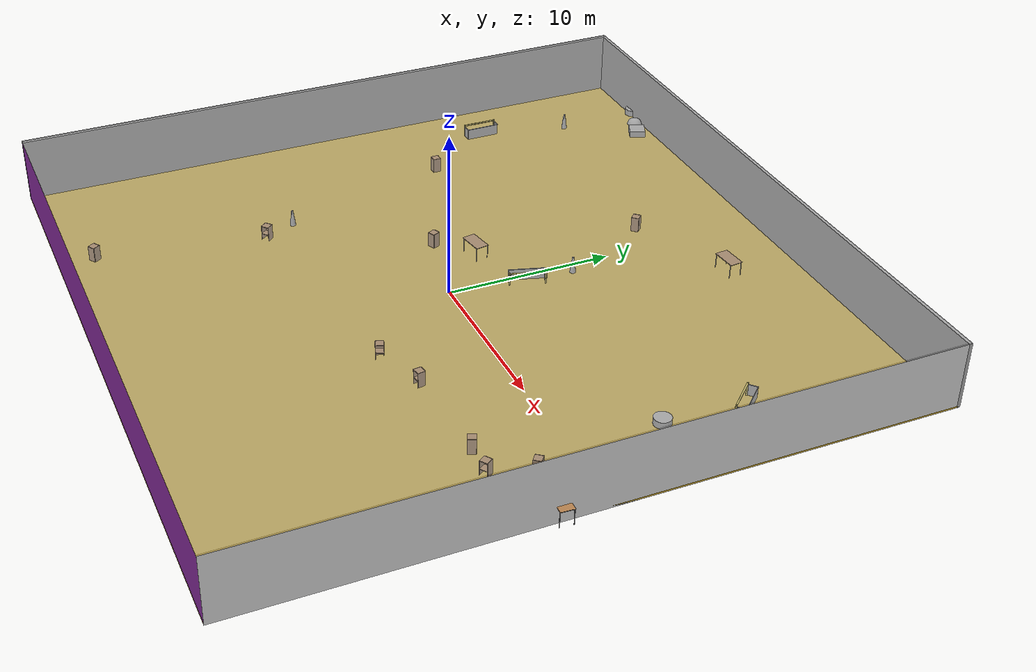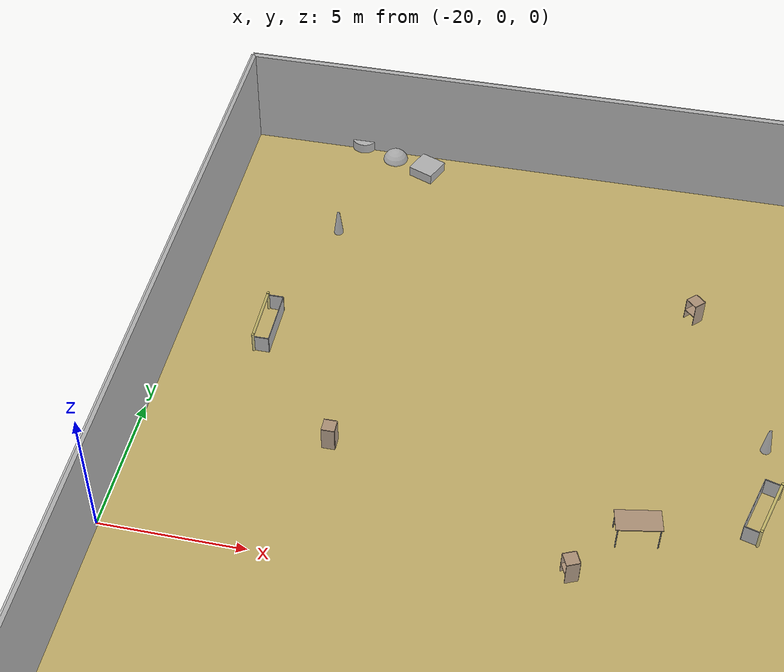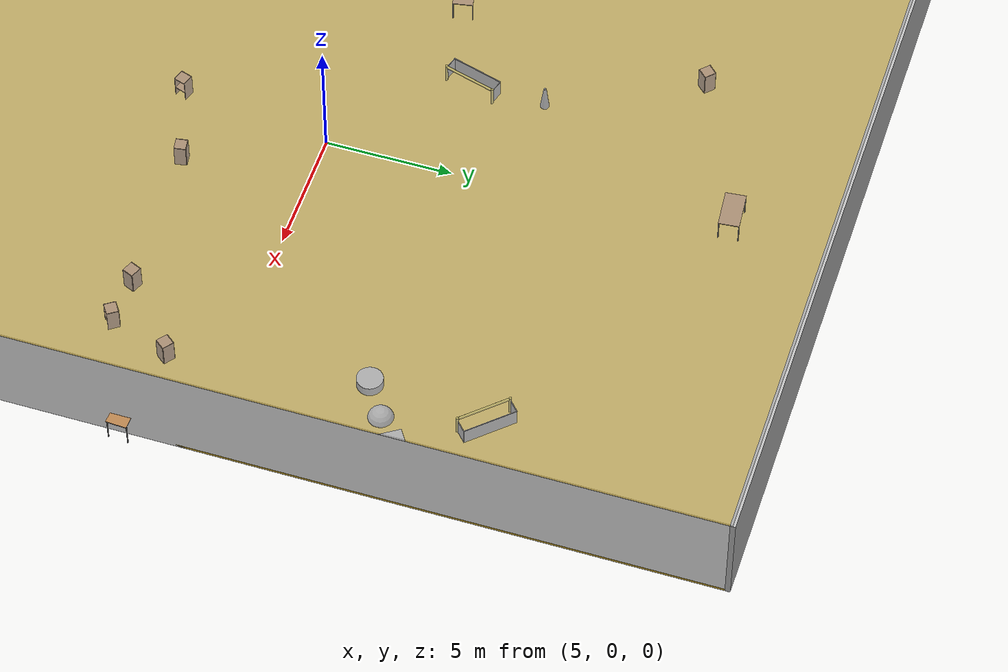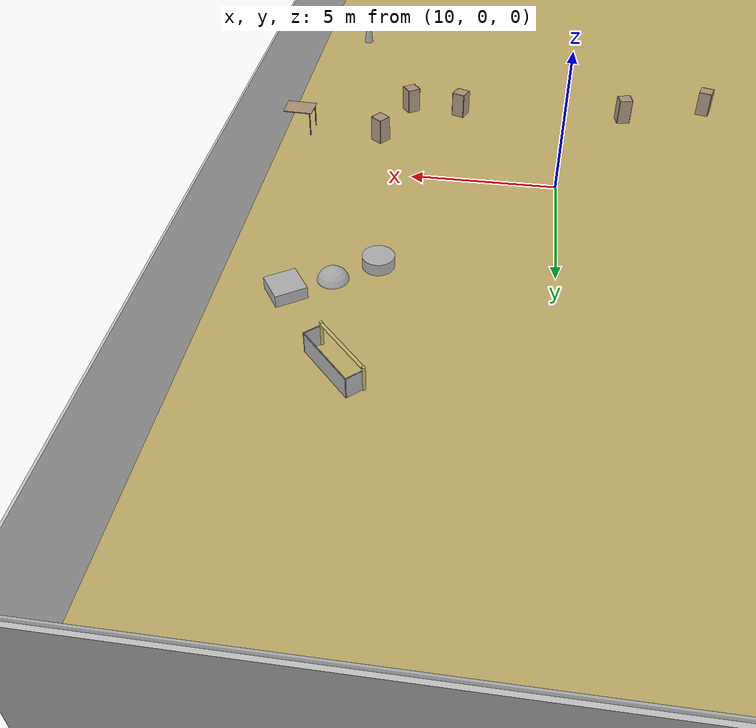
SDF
<sdf version="1.4">
 <world name="default">
  <physics type="ode">
   <max_step_size>0.001</max_step_size>
   <real_time_factor>1</real_time_factor>
   <real_time_update_rate>1000</real_time_update_rate>
   <gravity>0 0 -9.8</gravity>
  </physics>
  <scene><ambient>0.4 0.4 0.4 1</ambient><background>0.7 0.7 0.7 1</background><shadows>1</shadows></scene>
  <model name="Surrounding">
   <static>1</static>
   <link name="Ceiling">
    <collision name="Ceiling_Collision"><geometry><box><size>40 40 0.1</size></box></geometry></collision>
    <visual name="Ceiling_Visual">
     <geometry><box><size>40 40 0.1</size></box></geometry>
     <material>
      <script><uri>file://media/materials/scripts/gazebo.material</uri><name>Gazebo/GreyTransparent</name></script>
     </material>
    </visual>
    <pose>0 0 4.05 0 0 0</pose>
   </link>
   <link name="Wall_South">
    <collision name="Wall_South_Collision">
     <geometry><box><size>40 0 4</size></box></geometry>
     <pose>0 0 2 0 -0 0</pose>
    </collision>
    <visual name="Wall_South_Visual">
     <pose>0 0 2 0 -0 0</pose>
     <geometry><box><size>40 0 4</size></box></geometry>
     <material>
      <script><uri>file://media/materials/scripts/gazebo.material</uri><name>Gazebo/Purple</name></script>
     </material>
    </visual>
    <velocity_decay><linear>0</linear><angular>0</angular></velocity_decay>
    <pose>0 -20 0 0 -0 0</pose>
   </link>
   <link name="Wall_East">
    <collision name="Wall_21_Collision">
     <geometry><box><size>40 0 4</size></box></geometry>
     <pose>0 0 2 0 -0 0</pose>
    </collision>
    <visual name="Wall_21_Visual">
     <pose>0 0 2 0 -0 0</pose>
     <geometry><box><size>40 0 4</size></box></geometry>
     <material>
      <script><uri>file://media/materials/scripts/gazebo.material</uri><name>Gazebo/White</name></script>
     </material>
    </visual>
    <velocity_decay><linear>0</linear><angular>0</angular></velocity_decay>
    <pose>20 0 0 0 -0 1.5708</pose>
   </link>
   <link name="Wall_North">
    <collision name="Wall_22_Collision">
     <geometry><box><size>40 0.2 4</size></box></geometry>
     <pose>0 0 2 0 -0 0</pose>
    </collision>
    <visual name="Wall_22_Visual">
     <pose>0 0 2 0 -0 0</pose>
     <geometry><box><size>40 0.2 4</size></box></geometry>
     <material>
      <script><uri>file://media/materials/scripts/gazebo.material</uri><name>Gazebo/LightOff</name></script>
     </material>
    </visual>
    <velocity_decay><linear>0</linear><angular>0</angular></velocity_decay>
    <pose>0 20 0 0 -0 0</pose>
   </link>
   <link name="Wall_West">
    <collision name="Wall_23_Collision">
     <geometry><box><size>40 0.2 4</size></box></geometry>
     <pose>0 0 2 0 -0 0</pose>
    </collision>
    <visual name="Wall_23_Visual">
     <pose>0 0 2 0 -0 0</pose>
     <geometry><box><size>40 0.2 4</size></box></geometry>
     <material>
      <script><uri>file://media/materials/scripts/gazebo.material</uri><name>Gazebo/CloudySky</name></script>
     </material>
    </visual>
    <velocity_decay><linear>0</linear><angular>0</angular></velocity_decay>
    <pose>-20 0 0 0 0 -1.5708</pose>
   </link>
   <link name="Ground_link">
    <collision name="collision">
     <pose>0 0 .05 0 -0 0</pose>
     <geometry><box><size>40 40 0.1</size></box></geometry>
    </collision>
    <visual name="visual">
     <pose>0 0 .05 0 -0 0</pose>
     <geometry><box><size>40 40 0.1</size></box></geometry>
     <material>
      <script><uri>file://media/materials/scripts/gazebo.material</uri><name>Gazebo/Gold</name></script>
     </material>
    </visual>
   </link>
   <static>1</static>
  </model>
  <spherical_coordinates>
   <surface_model>EARTH_WGS84</surface_model>
   <latitude_deg>0</latitude_deg>
   <longitude_deg>0</longitude_deg>
   <elevation>0</elevation>
   <heading_deg>0</heading_deg>
  </spherical_coordinates>
  <light name="lightball_0" type="diffuse">
   <diffuse>0.8 0.8 0.8 1</diffuse>
   <specular>0.2 0.2 0.2 1</specular>
   <attenuation>
    <range>100</range>
    <constant>0.7</constant>
    <linear>0.01</linear>
    <quadratic>0.001</quadratic>
   </attenuation>
   <direction>-0.5 0.1 -0.9</direction>
   <pose>-13.9296430942 5.41245826011 3.68984053088 0 0 0</pose>
  </light>
  <light name="lightball_1" type="diffuse">
   <diffuse>0.8 0.8 0.8 1</diffuse>
   <specular>0.2 0.2 0.2 1</specular>
   <attenuation>
    <range>100</range>
    <constant>0.7</constant>
    <linear>0.01</linear>
    <quadratic>0.001</quadratic>
   </attenuation>
   <direction>-0.5 0.1 -0.9</direction>
   <pose>15.0962703838 19.3340669861 3.62100587868 0 0 0</pose>
  </light>
  <light name="lightball_2" type="diffuse">
   <diffuse>0.8 0.8 0.8 1</diffuse>
   <specular>0.2 0.2 0.2 1</specular>
   <attenuation>
    <range>100</range>
    <constant>0.7</constant>
    <linear>0.01</linear>
    <quadratic>0.001</quadratic>
   </attenuation>
   <direction>-0.5 0.1 -0.9</direction>
   <pose>0.353371623248 -16.3315168014 1.88513524924 0 0 0</pose>
  </light>
  <light name="lightball_3" type="diffuse">
   <diffuse>0.8 0.8 0.8 1</diffuse>
   <specular>0.2 0.2 0.2 1</specular>
   <attenuation>
    <range>100</range>
    <constant>0.7</constant>
    <linear>0.01</linear>
    <quadratic>0.001</quadratic>
   </attenuation>
   <direction>-0.5 0.1 -0.9</direction>
   <pose>10.4964973943 12.7515941995 2.04780793593 0 0 0</pose>
  </light>
  <light name="lightball_4" type="diffuse">
   <diffuse>0.8 0.8 0.8 1</diffuse>
   <specular>0.2 0.2 0.2 1</specular>
   <attenuation>
    <range>100</range>
    <constant>0.7</constant>
    <linear>0.01</linear>
    <quadratic>0.001</quadratic>
   </attenuation>
   <direction>-0.5 0.1 -0.9</direction>
   <pose>-0.694135983993 -10.0248924038 2.41715516456 0 0 0</pose>
  </light>
  <light name="lightball_5" type="diffuse">
   <diffuse>0.8 0.8 0.8 1</diffuse>
   <specular>0.2 0.2 0.2 1</specular>
   <attenuation>
    <range>100</range>
    <constant>0.7</constant>
    <linear>0.01</linear>
    <quadratic>0.001</quadratic>
   </attenuation>
   <direction>-0.5 0.1 -0.9</direction>
   <pose>-2.04186014065 1.45255924182 1.28596470363 0 0 0</pose>
  </light>
  <light name="lightball_6" type="diffuse">
   <diffuse>0.8 0.8 0.8 1</diffuse>
   <specular>0.2 0.2 0.2 1</specular>
   <attenuation>
    <range>100</range>
    <constant>0.7</constant>
    <linear>0.01</linear>
    <quadratic>0.001</quadratic>
   </attenuation>
   <direction>-0.5 0.1 -0.9</direction>
   <pose>8.62765083791 7.24305494938 2.3525730746 0 0 0</pose>
  </light>
  <light name="lightball_7" type="diffuse">
   <diffuse>0.8 0.8 0.8 1</diffuse>
   <specular>0.2 0.2 0.2 1</specular>
   <attenuation>
    <range>100</range>
    <constant>0.7</constant>
    <linear>0.01</linear>
    <quadratic>0.001</quadratic>
   </attenuation>
   <direction>-0.5 0.1 -0.9</direction>
   <pose>4.02696712225 2.87095251193 3.14503584719 0 0 0</pose>
  </light>
  <light name="lightball_8" type="diffuse">
   <diffuse>0.8 0.8 0.8 1</diffuse>
   <specular>0.2 0.2 0.2 1</specular>
   <attenuation>
    <range>100</range>
    <constant>0.7</constant>
    <linear>0.01</linear>
    <quadratic>0.001</quadratic>
   </attenuation>
   <direction>-0.5 0.1 -0.9</direction>
   <pose>5.133151872 6.0157954777 3.46689471864 0 0 0</pose>
  </light>
  <light name="lightball_9" type="diffuse">
   <diffuse>0.8 0.8 0.8 1</diffuse>
   <specular>0.2 0.2 0.2 1</specular>
   <attenuation>
    <range>100</range>
    <constant>0.7</constant>
    <linear>0.01</linear>
    <quadratic>0.001</quadratic>
   </attenuation>
   <direction>-0.5 0.1 -0.9</direction>
   <pose>6.55488769904 12.9255224793 0.913279310821 0 0 0</pose>
  </light>
  <include>
   <uri>model://robocup_3Dsim_goal</uri>
   <pose>-17.0298252707 9.30612584482 0 0 0 0.00285450834659</pose>
  </include>
  <include><uri>model://cabinet</uri><pose>-13.4342667173 4.67513229825 0 0 0 0.00475660589595</pose></include>
  <include>
   <uri>model://construction_cone</uri>
   <pose>-15.4698588431 14.8478124269 0 0 0 2.9853629077</pose>
  </include>
  <include>
   <uri>model://textured_shapes</uri>
   <pose>-14.2061913767 19.5369415968 0 0 0 1.17435728698</pose>
  </include>
  <include><uri>model://cabinet</uri><pose>-11.2574536579 -17.8579503529 0 0 0 0.560937263198</pose></include>
  <include>
   <uri>model://construction_cone</uri>
   <pose>-10.4881839243 -5.92551557371 0 0 0 0.949156322749</pose>
  </include>
  <include><uri>model://cabinet</uri><pose>-9.55866030339 -7.83405163865 0 0 0 2.26258928878</pose></include>
  <include><uri>model://cabinet</uri><pose>-4.96443285893 1.06599203498 0 0 0 0.418127503274</pose></include>
  <include><uri>model://table</uri><pose>-3.07627172729 2.94215662058 0 0 0 0.176961766608</pose></include>
  <include><uri>model://cabinet</uri><pose>-1.94629615977 13.0086998323 0 0 0 0.785751794512</pose></include>
  <include>
   <uri>model://robocup_3Dsim_goal</uri>
   <pose>1.01753603469 4.42453032652 0 0 0 2.85427648449</pose>
  </include>
  <include>
   <uri>model://construction_cone</uri>
   <pose>0.838924654345 7.38938937672 0 0 0 2.84693592747</pose>
  </include>
  <include><uri>model://cabinet</uri><pose>4.42558315798 -5.92722351745 0 0 0 2.81993127235</pose></include>
  <include><uri>model://table</uri><pose>4.25997957855 15.7268042083 0 0 0 0.0904979836544</pose></include>
  <include><uri>model://cabinet</uri><pose>7.530289332 -4.88509226914 0 0 0 1.72866150107</pose></include>
  <include><uri>model://cabinet</uri><pose>13.6649774785 -4.55155489266 0 0 0 1.16792803767</pose></include>
  <include><uri>model://cabinet</uri><pose>15.5724605346 -4.64076120041 0 0 0 2.1751272871</pose></include>
  <include><uri>model://cabinet</uri><pose>16.4153737552 -2.2384914214 0 0 0 0.904620263245</pose></include>
  <include>
   <uri>model://textured_shapes</uri>
   <pose>16.6095725812 6.07126996976 0 0 0 2.15523254306</pose>
  </include>
  <include>
   <uri>model://robocup_3Dsim_goal</uri>
   <pose>15.6607730087 9.66778435086 0 0 0 0.743639518586</pose>
  </include>
  <include>
   <uri>model://construction_cone</uri>
   <pose>18.166416661 -10.469878571 0 0 0 2.55415960814</pose>
  </include>
  <include><uri>model://table</uri><pose>19.6864095675 -2.57732166781 0 0 0 3.08335732298</pose></include>
 </world>
</sdf>

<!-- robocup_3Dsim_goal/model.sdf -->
<sdf version="1.5">
  <model name="robocup_3d_goal">
    <static>true</static>
    <link name="left_post">
      <pose>0 1.05 0.45 0 0 0</pose>
      <collision name="collision">
        <geometry>
          <cylinder>
            <radius>0.05</radius>
            <length>0.9</length>
          </cylinder>
        </geometry>
      </collision>
      <visual name="visual">
        <geometry>
          <cylinder>
            <radius>0.05</radius>
            <length>0.9</length>
          </cylinder>
        </geometry>
        <material>
          <script>
            <uri>file://media/materials/scripts/gazebo.material</uri>
            <name>Gazebo/ZincYellow</name>
          </script>
        </material>
      </visual>
    </link>
    <link name="left_support_horiz_lower">
      <pose>0.30 1.05 0.01 0 0 0</pose>
      <collision name="collision">
        <geometry>
          <box>
            <size>0.50 0.02 0.02</size>
          </box>
        </geometry>
      </collision>
      <visual name="visual">
        <geometry>
          <box>
            <size>0.50 0.02 0.02</size>
          </box>
        </geometry>
        <material>
          <script>
            <uri>file://media/materials/scripts/gazebo.material</uri>
            <name>Gazebo/White</name>
          </script>
        </material>
      </visual>
    </link>
    <link name="left_support_horiz_upper">
      <pose>0.30 1.05 0.79 0 0 0</pose>
      <collision name="collision">
        <geometry>
          <box>
            <size>0.50 0.02 0.02</size>
          </box>
        </geometry>
      </collision>
      <visual name="visual">
        <geometry>
          <box>
            <size>0.50 0.02 0.02</size>
          </box>
        </geometry>
        <material>
          <script>
            <uri>file://media/materials/scripts/gazebo.material</uri>
            <name>Gazebo/White</name>
          </script>
        </material>
      </visual>
    </link>
    <link name="left_support_vertical">
      <pose>0.56 1.05 0.4 0 1.5708 0</pose>
      <collision name="collision">
        <geometry>
          <box>
            <size>0.80 0.02 0.02</size>
          </box>
        </geometry>
      </collision>
      <visual name="visual">
        <geometry>
          <box>
            <size>0.80 0.02 0.02</size>
          </box>
        </geometry>
        <material>
          <script>
            <uri>file://media/materials/scripts/gazebo.material</uri>
            <name>Gazebo/White</name>
          </script>
        </material>
      </visual>
    </link>
    <link name="right_support_horiz_lower">
      <pose>0.30 -1.05 0.01 0 0 0</pose>
      <collision name="collision">
        <geometry>
          <box>
            <size>0.50 0.02 0.02</size>
          </box>
        </geometry>
      </collision>
      <visual name="visual">
        <geometry>
          <box>
            <size>0.50 0.02 0.02</size>
          </box>
        </geometry>
        <material>
          <script>
            <uri>file://media/materials/scripts/gazebo.material</uri>
            <name>Gazebo/White</name>
          </script>
        </material>
      </visual>
    </link>
    <link name="right_support_horiz_upper">
      <pose>0.30 -1.05 0.79 0 0 0</pose>
      <collision name="collision">
        <geometry>
          <box>
            <size>0.50 0.02 0.02</size>
          </box>
        </geometry>
      </collision>
      <visual name="visual">
        <geometry>
          <box>
            <size>0.50 0.02 0.02</size>
          </box>
        </geometry>
        <material>
          <script>
            <uri>file://media/materials/scripts/gazebo.material</uri>
            <name>Gazebo/White</name>
          </script>
        </material>
      </visual>
    </link>
    <link name="right_support_vertical">
      <pose>0.56 -1.05 0.4 0 1.5708 0</pose>
      <collision name="collision">
        <geometry>
          <box>
            <size>0.80 0.02 0.02</size>
          </box>
        </geometry>
      </collision>
      <visual name="visual">
        <geometry>
          <box>
            <size>0.80 0.02 0.02</size>
          </box>
        </geometry>
        <material>
          <script>
            <uri>file://media/materials/scripts/gazebo.material</uri>
            <name>Gazebo/White</name>
          </script>
        </material>
      </visual>
    </link>
    <link name="center_support_horiz_lower">
      <pose>0.56 0 0.01 0 1.5708 0</pose>
      <collision name="collision">
        <geometry>
          <box>
            <size>0.02 2.08 0.02</size>
          </box>
        </geometry>
      </collision>
      <visual name="visual">
        <geometry>
          <box>
            <size>0.02 2.08 0.02</size>
          </box>
        </geometry>
        <material>
          <script>
            <uri>file://media/materials/scripts/gazebo.material</uri>
            <name>Gazebo/White</name>
          </script>
        </material>
      </visual>
    </link>
    <link name="center_support_horiz_upper">
      <pose>0.56 0 0.79 0 1.5708 0</pose>
      <collision name="collision">
        <geometry>
          <box>
            <size>0.02 2.08 0.02</size>
          </box>
        </geometry>
      </collision>
      <visual name="visual">
        <geometry>
          <box>
            <size>0.02 2.08 0.02</size>
          </box>
        </geometry>
        <material>
          <script>
            <uri>file://media/materials/scripts/gazebo.material</uri>
            <name>Gazebo/White</name>
          </script>
        </material>
      </visual>
    </link>
    <link name="right_post">
      <pose>0 -1.05 0.45 0 0 0</pose>
      <collision name="collision">
        <geometry>
          <cylinder>
            <radius>0.05</radius>
            <length>0.9</length>
          </cylinder>
        </geometry>
      </collision>
      <visual name="visual">
        <geometry>
          <cylinder>
            <radius>0.05</radius>
            <length>0.9</length>
          </cylinder>
        </geometry>
        <material>
          <script>
            <uri>file://media/materials/scripts/gazebo.material</uri>
            <name>Gazebo/ZincYellow</name>
          </script>
        </material>
      </visual>
    </link>
    <link name="crossbar">
      <pose>0 0 0.85 1.57 1.57 0</pose>
      <collision name="collision">
        <geometry>
          <cylinder>
            <radius>0.05</radius>
            <length>2.0</length>
          </cylinder>
        </geometry>
      </collision>
      <visual name="visual">
        <geometry>
          <cylinder>
            <radius>0.05</radius>
            <length>2.0</length>
          </cylinder>
        </geometry>
        <material>
          <script>
            <uri>file://media/materials/scripts/gazebo.material</uri>
            <name>Gazebo/ZincYellow</name>
          </script>
        </material>
      </visual>
    </link>
    <link name="center_net">
      <pose>0.56 0 0.40 0 0 0</pose>
      <collision name="collision">
        <geometry>
          <box>
            <size>0.01 2.1 0.80</size>
          </box>
        </geometry>
      </collision>
      <visual name="visual">
        <geometry>
          <box>
            <size>0.01 2.1 0.80</size>
          </box>
        </geometry>
        <material>
          <script>
            <uri>model://../model_source/models/robocup09_spl_field/materials/scripts/</uri>
            <uri>model://../model_source/models/robocup09_spl_field/materials/textures/</uri>
            <name>RoboCup/Net</name>
          </script>
        </material>
      </visual>
    </link>
    <link name="left_net">
      <pose>0.30 1.05 0.40 0 0 0</pose>
      <collision name="collision">
        <geometry>
          <box>
            <size>0.50 0.01 0.76</size>
          </box>
        </geometry>
      </collision>
      <visual name="visual">
        <geometry>
          <box>
            <size>0.50 0.01 0.76</size>
          </box>
        </geometry>
        <material>
          <script>
            <uri>model://../model_source/models/robocup09_spl_field/materials/scripts/</uri>
            <uri>model://../model_source/models/robocup09_spl_field/materials/textures/</uri>
            <name>RoboCup/Net</name>
          </script>
        </material>
      </visual>
    </link>
    <link name="right_net">
      <pose>0.30 -1.05 0.40 0 0 0</pose>
      <collision name="collision">
        <geometry>
          <box>
            <size>0.50 0.01 0.76</size>
          </box>
        </geometry>
      </collision>
      <visual name="visual">
        <geometry>
          <box>
            <size>0.50 0.01 0.76</size>
          </box>
        </geometry>
        <material>
          <script>
            <uri>model://../model_source/models/robocup09_spl_field/materials/scripts/</uri>
            <uri>model://../model_source/models/robocup09_spl_field/materials/textures/</uri>
            <name>RoboCup/Net</name>
          </script>
        </material>
      </visual>
    </link>
  </model>
</sdf>

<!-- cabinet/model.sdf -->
<sdf version="1.5">
  <model name="cabinet">
    <static>true</static>
    <link name="cabinet_bottom_plate">
      <inertial>
        <pose>0 0 -1 0 0 0</pose>
        <inertia>
          <ixx>2.050000</ixx>
          <ixy>0</ixy>
          <ixz>0</ixz>
          <iyy>2.050000</iyy>
          <iyz>0</iyz>
          <izz>2.050000</izz>
        </inertia>
        <mass>25.000000</mass>
      </inertial>
      <collision name="cabinet_bottom_plate_geom">
        <pose>0 0 0.010000 0 0 0</pose>
        <geometry>
          <box>
            <size>0.450000 0.450000 0.020000</size>
          </box>
        </geometry>
      </collision>
      <visual name="cabinet_bottom_plate_geom_visual">
        <pose>0 0 0.010000 0 0 0</pose>
        <geometry>
          <box>
            <size>0.450000 0.450000 0.020000</size>
          </box>
        </geometry>
        <material>
          <script>
            <uri>model://media/materials/scripts/gazebo.material</uri>
            <name>Gazebo/Wood</name>
          </script>
        </material>
      </visual>
      <collision name="cabinet_bottom_plate_geom_cabinet_back_plate">
        <pose>0.235000 0 0.510000 0 0 0</pose>
        <geometry>
          <box>
            <size>0.020000 0.450000 1.020000</size>
          </box>
        </geometry>
      </collision>
      <visual name="cabinet_bottom_plate_geom_cabinet_back_plate_visual">
        <pose>0.235000 0 0.510000 0 0 0</pose>
        <geometry>
          <box>
            <size>0.020000 0.450000 1.020000</size>
          </box>
        </geometry>
        <material>
          <script>
            <uri>model://media/materials/scripts/gazebo.material</uri>
            <name>Gazebo/Wood</name>
          </script>
        </material>
      </visual>
      <collision name="cabinet_bottom_plate_geom_cabinet_left_plate">
        <pose>0 0.235000 0.510000 0 0 0</pose>
        <geometry>
          <box>
            <size>0.450000 0.020000 1.020000</size>
          </box>
        </geometry>
      </collision>
      <visual name="cabinet_bottom_plate_geom_cabinet_left_plate_visual">
        <pose>0 0.235000 0.510000 0 0 0</pose>
        <geometry>
          <box>
            <size>0.450000 0.020000 1.020000</size>
          </box>
        </geometry>
        <material>
          <script>
            <uri>model://media/materials/scripts/gazebo.material</uri>
            <name>Gazebo/Wood</name>
          </script>
        </material>
      </visual>
      <collision name="cabinet_bottom_plate_geom_cabinet_middle_plate">
        <pose>0 0 0.510000 0 0 0</pose>
        <geometry>
          <box>
            <size>0.450000 0.450000 0.020000</size>
          </box>
        </geometry>
      </collision>
      <visual name="cabinet_bottom_plate_geom_cabinet_middle_plate_visual">
        <pose>0 0 0.510000 0 0 0</pose>
        <geometry>
          <box>
            <size>0.450000 0.450000 0.020000</size>
          </box>
        </geometry>
        <material>
          <script>
            <uri>model://media/materials/scripts/gazebo.material</uri>
            <name>Gazebo/Wood</name>
          </script>
        </material>
      </visual>
      <collision name="cabinet_bottom_plate_geom_cabinet_right_plate">
        <pose>0 -0.235000 0.510000 0 0 0</pose>
        <geometry>
          <box>
            <size>0.450000 0.020000 1.020000</size>
          </box>
        </geometry>
      </collision>
      <visual name="cabinet_bottom_plate_geom_cabinet_right_plate_visual">
        <pose>0 -0.235000 0.510000 0 0 0</pose>
        <geometry>
          <box>
            <size>0.450000 0.020000 1.020000</size>
          </box>
        </geometry>
        <material>
          <script>
            <uri>model://media/materials/scripts/gazebo.material</uri>
            <name>Gazebo/Wood</name>
          </script>
        </material>
      </visual>
      <collision name="cabinet_bottom_plate_geom_cabinet_top_plate">
        <pose>0 0 1.010000 0 0 0</pose>
        <geometry>
          <box>
            <size>0.450000 0.450000 0.020000</size>
          </box>
        </geometry>
      </collision>
      <visual name="cabinet_bottom_plate_geom_cabinet_top_plate_visual">
        <pose>0 0 1.010000 0 0 0</pose>
        <geometry>
          <box>
            <size>0.450000 0.450000 0.020000</size>
          </box>
        </geometry>
        <material>
          <script>
            <uri>model://media/materials/scripts/gazebo.material</uri>
            <name>Gazebo/Wood</name>
          </script>
        </material>
      </visual>
    </link>
  </model>
</sdf>

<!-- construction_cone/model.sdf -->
<sdf version="1.5">
  <model name="Construction Cone">
    <link name="link">
      <collision name="collision">
        <geometry>
          <mesh>
            <scale>10 10 10</scale>
            <uri>file://isr-testbed/construction_cone/meshes/construction_cone.dae</uri>
          </mesh>
        </geometry>
      </collision>
      <visual name="visual">
        <geometry>
          <mesh>
            <scale>10 10 10</scale>
            <uri>file://isr-testbed/construction_cone/meshes/construction_cone.dae</uri>
          </mesh>
        </geometry>
      </visual>
    </link>
  </model>
</sdf>

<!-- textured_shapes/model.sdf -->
<sdf version="1.6">
  <model name="textured_shapes">
    <pose>0 0 0.5 0 0 0</pose>
    <link name="box">
      <pose>0 -1.5 0 0 0 0</pose>
      <collision name="collision">
        <geometry>
          <box>
            <size>1 1 1</size>
          </box>
        </geometry>
      </collision>
      <visual name="visual">
        <geometry>
          <box>
            <size>1 1 1</size>
          </box>
        </geometry>
        <material>
          <script>
            <uri>model://../model_source/models/textured_shapes/materials/scripts</uri>
            <uri>model://../model_source/models/textured_shapes/materials/textures</uri>
            <name>TexturedShape/Squares</name>
          </script>
        </material>
      </visual>
    </link>
    <link name="sphere">
      <collision name="collision">
        <geometry>
          <sphere>
            <radius>0.5</radius>
          </sphere>
        </geometry>
      </collision>
      <visual name="visual">
        <geometry>
          <sphere>
            <radius>0.5</radius>
          </sphere>
        </geometry>
        <material>
          <script>
            <uri>model://../model_source/models/textured_shapes/materials/scripts</uri>
            <uri>model://../model_source/models/textured_shapes/materials/textures</uri>
            <name>TexturedShape/Squares</name>
          </script>
        </material>
      </visual>
    </link>
    <link name="cylinder">
      <pose>0 1.5 0 0 0 0</pose>
      <collision name="collision">
        <geometry>
          <cylinder>
            <radius>0.5</radius>
            <length>1</length>
          </cylinder>
        </geometry>
      </collision>
      <visual name="visual">
        <geometry>
          <cylinder>
            <radius>0.5</radius>
            <length>1</length>
          </cylinder>
        </geometry>
        <material>
          <script>
            <uri>model://../model_source/models/textured_shapes/materials/scripts</uri>
            <uri>model://../model_source/models/textured_shapes/materials/textures</uri>
            <name>TexturedShape/Squares</name>
          </script>
        </material>
      </visual>
    </link>
  </model>
</sdf>

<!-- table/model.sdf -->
<sdf version="1.5">
  <model name="table">
    <static>true</static>
    <link name="link">
      <collision name="surface">
        <pose>0 0 1.0 0 0 0</pose>
        <geometry>
          <box>
            <size>1.5 0.8 0.03</size>
          </box>
        </geometry>
        <surface>
          <friction>
            <ode>
              <mu>0.6</mu>
              <mu2>0.6</mu2>
            </ode>
          </friction>
        </surface>
      </collision>
      <visual name="visual1">
        <pose>0 0 1.0 0 0 0</pose>
        <geometry>
          <box>
            <size>1.5 0.8 0.03</size>
          </box>
        </geometry>
        <material>
          <script>
            <uri>model://media/materials/scripts/gazebo.material</uri>
            <name>Gazebo/Wood</name>
          </script>
        </material>
      </visual>
      <collision name="front_left_leg">
        <pose>0.68 0.38 0.5 0 0 0</pose>
        <geometry>
          <cylinder>
            <radius>0.02</radius>
            <length>1.0</length>
          </cylinder>
        </geometry>
      </collision>
      <visual name="front_left_leg">
        <pose>0.68 0.38 0.5 0 0 0</pose>
        <geometry>
          <cylinder>
            <radius>0.02</radius>
            <length>1.0</length>
          </cylinder>
        </geometry>
        <material>
          <script>
            <uri>model://media/materials/scripts/gazebo.material</uri>
            <name>Gazebo/Grey</name>
          </script>
        </material>
      </visual>
      <collision name="front_right_leg">
        <pose>0.68 -0.38 0.5 0 0 0</pose>
        <geometry>
          <cylinder>
            <radius>0.02</radius>
            <length>1.0</length>
          </cylinder>
        </geometry>
      </collision>
      <visual name="front_right_leg">
        <pose>0.68 -0.38 0.5 0 0 0</pose>
        <geometry>
          <cylinder>
            <radius>0.02</radius>
            <length>1.0</length>
          </cylinder>
        </geometry>
        <material>
          <script>
            <uri>model://media/materials/scripts/gazebo.material</uri>
            <name>Gazebo/Grey</name>
          </script>
        </material>
      </visual>
      <collision name="back_right_leg">
        <pose>-0.68 -0.38 0.5 0 0 0</pose>
        <geometry>
          <cylinder>
            <radius>0.02</radius>
            <length>1.0</length>
          </cylinder>
        </geometry>
      </collision>
      <visual name="back_right_leg">
        <pose>-0.68 -0.38 0.5 0 0 0</pose>
        <geometry>
          <cylinder>
            <radius>0.02</radius>
            <length>1.0</length>
          </cylinder>
        </geometry>
        <material>
          <script>
            <uri>model://media/materials/scripts/gazebo.material</uri>
            <name>Gazebo/Grey</name>
          </script>
        </material>
      </visual>
      <collision name="back_left_leg">
        <pose>-0.68 0.38 0.5 0 0 0</pose>
        <geometry>
          <cylinder>
            <radius>0.02</radius>
            <length>1.0</length>
          </cylinder>
        </geometry>
      </collision>
      <visual name="back_left_leg">
        <pose>-0.68 0.38 0.5 0 0 0</pose>
        <geometry>
          <cylinder>
            <radius>0.02</radius>
            <length>1.0</length>
          </cylinder>
        </geometry>
        <material>
          <script>
            <uri>model://media/materials/scripts/gazebo.material</uri>
            <name>Gazebo/Grey</name>
          </script>
        </material>
      </visual>
    </link>
  </model>
</sdf>
